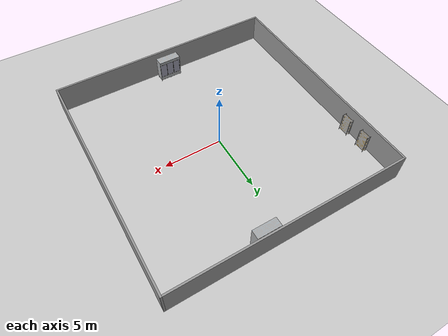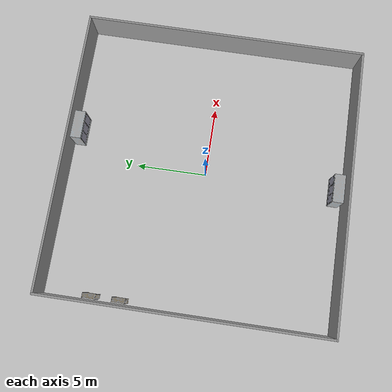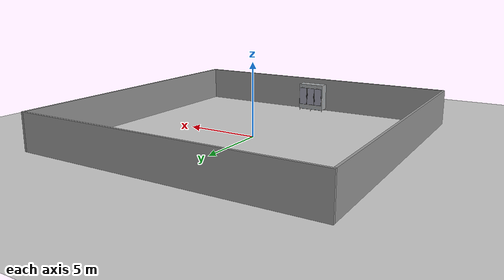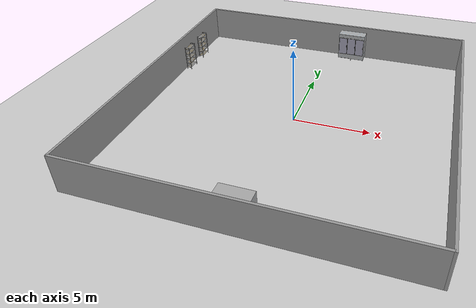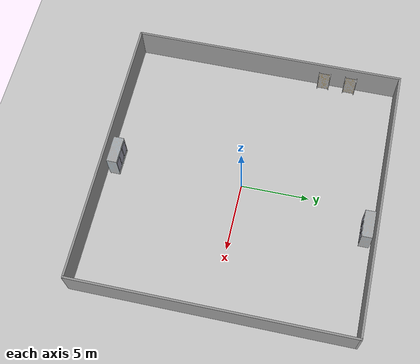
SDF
<sdf version="1.7">
 <world name="default">
  <light name="sun" type="directional">
   <pose>0 0 10 0 -0 0</pose>
   <diffuse>0.8 0.8 0.8 1</diffuse>
   <specular>0.2 0.2 0.2 1</specular>
   <attenuation>
    <range>1000</range>
    <constant>0.9</constant>
    <linear>0.01</linear>
    <quadratic>0.001</quadratic>
   </attenuation>
   <direction>-0.5 0.1 -0.9</direction>
   <spot><inner_angle>0</inner_angle><outer_angle>0</outer_angle><falloff>0</falloff></spot>
  </light>
  <model name="ground_plane">
   <pose>0 0 0 0 -0 3.14</pose>
   <static>1</static>
   <link name="link">
    <collision name="collision">
     <geometry><plane><normal>0 0 1</normal><size>100 100</size></plane></geometry>
     <surface>
      <contact><collide_bitmask>65535</collide_bitmask></contact>
      <friction><ode><mu>100</mu><mu2>50</mu2></ode></friction>
     </surface>
    </collision>
    <visual name="visual">
     <cast_shadows>0</cast_shadows>
     <geometry><plane><normal>0 0 1</normal><size>100 100</size></plane></geometry>
     <material>
      <script><uri>file://media/materials/scripts/gazebo.material</uri><name>Gazebo/Grey</name></script>
     </material>
    </visual>
   </link>
  </model>
  <gravity>0 0 -9.8</gravity>
  <magnetic_field>6e-06 2.3e-05 -4.2e-05</magnetic_field>
  <atmosphere type="adiabatic"/>
  <physics type="ode">
   <max_step_size>0.001</max_step_size>
   <real_time_factor>1</real_time_factor>
   <real_time_update_rate>1000</real_time_update_rate>
  </physics>
  <scene><ambient>0.4 0.4 0.4 1</ambient><background>0.7 0.7 0.7 1</background><shadows>1</shadows></scene>
  <spherical_coordinates>
   <surface_model>EARTH_WGS84</surface_model>
   <latitude_deg>0</latitude_deg>
   <longitude_deg>0</longitude_deg>
   <elevation>0</elevation>
   <heading_deg>0</heading_deg>
  </spherical_coordinates>
  <model name="wall">
   <link name="Wall_0">
    <collision name="Wall_0_Collision">
     <geometry><box><size>20.15 0.15 2.5</size></box></geometry>
     <pose>0 0 1.25 0 -0 0</pose>
    </collision>
    <visual name="Wall_0_Visual">
     <pose>0 0 1.25 0 -0 0</pose>
     <geometry><box><size>20.15 0.15 2.5</size></box></geometry>
     <material>
      <script><uri>file://media/materials/scripts/gazebo.material</uri><name>Gazebo/Grey</name></script>
      <ambient>1 1 1 1</ambient>
     </material>
     <meta><layer>0</layer></meta>
    </visual>
    <pose>0 -10 0 0 -0 0</pose>
   </link>
   <link name="Wall_1">
    <collision name="Wall_1_Collision">
     <geometry><box><size>20.15 0.15 2.5</size></box></geometry>
     <pose>0 0 1.25 0 -0 0</pose>
    </collision>
    <visual name="Wall_1_Visual">
     <pose>0 0 1.25 0 -0 0</pose>
     <geometry><box><size>20.15 0.15 2.5</size></box></geometry>
     <material>
      <script><uri>file://media/materials/scripts/gazebo.material</uri><name>Gazebo/Grey</name></script>
      <ambient>1 1 1 1</ambient>
     </material>
     <meta><layer>0</layer></meta>
    </visual>
    <pose>10 0 0 0 -0 1.5708</pose>
   </link>
   <link name="Wall_2">
    <collision name="Wall_2_Collision">
     <geometry><box><size>20.15 0.15 2.5</size></box></geometry>
     <pose>0 0 1.25 0 -0 0</pose>
    </collision>
    <visual name="Wall_2_Visual">
     <pose>0 0 1.25 0 -0 0</pose>
     <geometry><box><size>20.15 0.15 2.5</size></box></geometry>
     <material>
      <script><uri>file://media/materials/scripts/gazebo.material</uri><name>Gazebo/Grey</name></script>
      <ambient>1 1 1 1</ambient>
     </material>
     <meta><layer>0</layer></meta>
    </visual>
    <pose>0 10 0 0 -0 3.14159</pose>
   </link>
   <link name="Wall_3">
    <collision name="Wall_3_Collision">
     <geometry><box><size>20.15 0.15 2.5</size></box></geometry>
     <pose>0 0 1.25 0 -0 0</pose>
    </collision>
    <visual name="Wall_3_Visual">
     <pose>0 0 1.25 0 -0 0</pose>
     <geometry><box><size>20.15 0.15 2.5</size></box></geometry>
     <material>
      <script><uri>file://media/materials/scripts/gazebo.material</uri><name>Gazebo/Grey</name></script>
      <ambient>1 1 1 1</ambient>
     </material>
     <meta><layer>0</layer></meta>
    </visual>
    <pose>-10 0 0 0 -0 -1.5708</pose>
   </link>
   <static>1</static>
  </model>
  <model name="shelf">
   <static>1</static>
   <link name="shelf_link">
    <collision name="shelf_collision">
     <pose>0.17 0.45 0 0 -0 0</pose>
     <geometry><box><size>0.35 0.9 2</size></box></geometry>
    </collision>
    <visual name="shelf_mesh"><geometry><mesh><uri>model://shelf/meshes/model.dae</uri></mesh></geometry></visual>
   </link>
   <pose>-9.8 6 0 0 -0 0</pose>
  </model>
  <model name="shelf_clone">
   <static>1</static>
   <link name="shelf_link">
    <collision name="shelf_collision">
     <pose>0.17 0.45 0 0 -0 0</pose>
     <geometry><box><size>0.35 0.9 2</size></box></geometry>
    </collision>
    <visual name="shelf_mesh"><geometry><mesh><uri>model://shelf/meshes/model.dae</uri></mesh></geometry></visual>
   </link>
   <pose>-9.8 4 0 0 -0 0</pose>
  </model>
  <model name="fridge">
   <pose>0.899882 9.78104 0 0 -0 0</pose>
   <static>1</static>
   <link name="link">
    <visual name="visual">
     <geometry><mesh><uri>model://fridge/meshes/model.dae</uri><scale>1 1 1</scale></mesh></geometry>
    </visual>
   </link>
  </model>
  <model name="fridge_0">
   <pose>0.969126 -9.67229 0 0 -0 3.14</pose>
   <static>1</static>
   <link name="link">
    <visual name="visual">
     <geometry><mesh><uri>model://fridge/meshes/model.dae</uri><scale>1 1 1</scale></mesh></geometry>
    </visual>
   </link>
  </model>
 </world>
</sdf>
